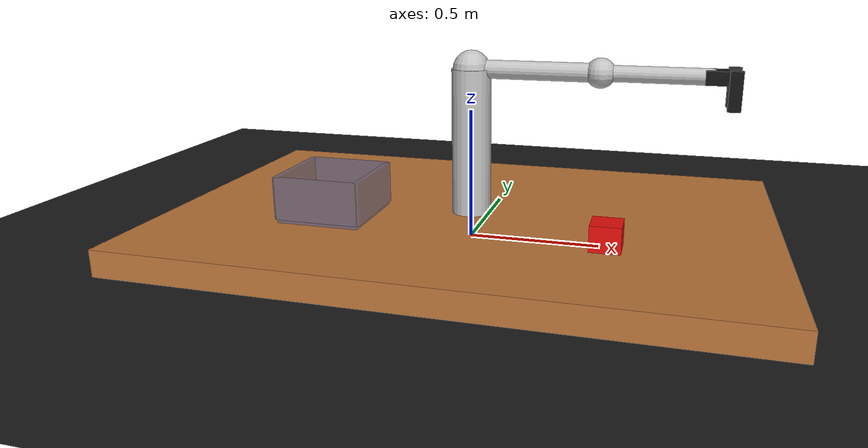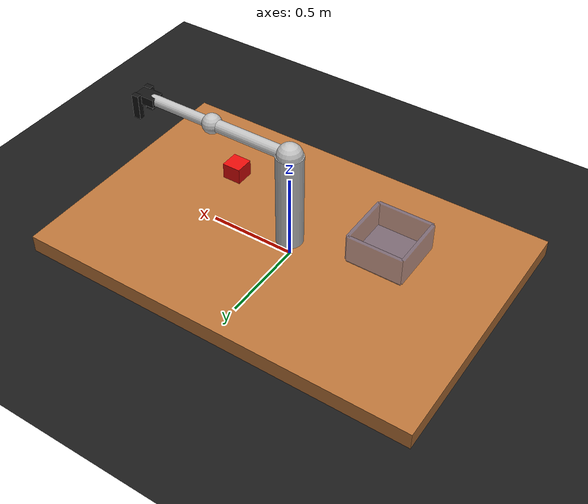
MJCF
<mujoco model="pick_place_arm">
  <compiler angle="radian" coordinate="local"/>
  <option timestep="0.005" gravity="0 0 -9.81" integrator="RK4"/>

  <asset>
    <texture name="grid" type="2d" builtin="checker" rgb1="0.15 0.15 0.15" rgb2="0.05 0.05 0.05" width="512" height="512"/>
    <material name="floor_mat" texture="grid" texrepeat="8 8" reflectance="0.15"/>
    <material name="table_mat" rgba="0.72 0.45 0.22 1"/>
    <material name="robot_mat" rgba="0.75 0.75 0.75 1"/>
    <material name="dark_mat" rgba="0.08 0.08 0.08 1"/>
    <material name="red_mat" rgba="0.9 0.05 0.04 1"/>
    <material name="blue_transparent" rgba="0.05 0.35 0.9 0.35"/>
  </asset>

  <worldbody>
    <light pos="0 -3 4" dir="0 1 -1" diffuse="1 1 1"/>
    <geom name="floor" type="plane" size="4 4 0.1" material="floor_mat"/>

    <body name="table" pos="0 0 0.05">
      <geom name="table_top" type="box" size="1.15 0.75 0.05" material="table_mat"/>
    </body>

    <!-- red cube with free joint -->
    <body name="red_cube" pos="0.55 -0.28 0.14">
      <freejoint name="cube_free"/>
      <geom name="red_cube_geom" type="box" size="0.055 0.055 0.055" material="red_mat" mass="0.04"/>
    </body>

    <!-- blue open box target -->
    <body name="blue_box" pos="-0.50 -0.18 0.12">
      <geom name="box_floor" type="box" size="0.16 0.16 0.015" material="blue_transparent" contype="0" conaffinity="0"/>
      <geom name="box_w1" type="box" pos="0 0.16 0.08" size="0.16 0.01 0.08" material="blue_transparent" contype="0" conaffinity="0"/>
      <geom name="box_w2" type="box" pos="0 -0.16 0.08" size="0.16 0.01 0.08" material="blue_transparent" contype="0" conaffinity="0"/>
      <geom name="box_w3" type="box" pos="0.16 0 0.08" size="0.01 0.16 0.08" material="blue_transparent" contype="0" conaffinity="0"/>
      <geom name="box_w4" type="box" pos="-0.16 0 0.08" size="0.01 0.16 0.08" material="blue_transparent" contype="0" conaffinity="0"/>
    </body>

    <!-- Robot: base yaw + shoulder + elbow + gripper -->
    <body name="robot_base" pos="0 0 0.10">
      <geom name="base_cylinder" type="cylinder" size="0.075 0.28" pos="0 0 0.28" material="robot_mat"/>
      <body name="yaw_link" pos="0 0 0.56">
        <joint name="base_yaw" type="hinge" axis="0 0 1" range="-3.14 3.14" damping="2"/>
        <geom name="yaw_ball" type="sphere" size="0.07" material="robot_mat"/>

        <body name="upper_arm" pos="0 0 0">
          <joint name="shoulder" type="hinge" axis="0 1 0" range="-1.55 1.25" damping="2"/>
          <geom name="upper_geom" type="capsule" fromto="0 0 0 0.48 0 0" size="0.035" material="robot_mat"/>
          <body name="elbow_link" pos="0.48 0 0">
            <joint name="elbow" type="hinge" axis="0 1 0" range="-2.2 2.2" damping="2"/>
            <geom name="elbow_ball" type="sphere" size="0.055" material="robot_mat"/>
            <geom name="forearm_geom" type="capsule" fromto="0 0 0 0.38 0 0" size="0.03" material="robot_mat"/>
            <body name="gripper_base" pos="0.38 0 0">
              <site name="ee_site" pos="0.08 0 0" size="0.02" rgba="0 1 0 1"/>
              <geom name="palm" type="box" pos="0.04 0 0" size="0.06 0.04 0.025" material="dark_mat"/>
              <body name="left_finger" pos="0.08 0.05 -0.04">
                <joint name="gripper_left" type="slide" axis="0 1 0" range="-0.04 0.03" damping="1"/>
                <geom name="left_finger_geom" type="box" size="0.022 0.015 0.07" material="dark_mat"/>
              </body>
              <body name="right_finger" pos="0.08 -0.05 -0.04">
                <joint name="gripper_right" type="slide" axis="0 1 0" range="-0.03 0.04" damping="1"/>
                <geom name="right_finger_geom" type="box" size="0.022 0.015 0.07" material="dark_mat"/>
              </body>
            </body>
          </body>
        </body>
      </body>
    </body>
  </worldbody>

  <actuator>
    <position name="act_base_yaw" joint="base_yaw" kp="180" ctrlrange="-3.14 3.14"/>
    <position name="act_shoulder" joint="shoulder" kp="180" ctrlrange="-1.55 1.25"/>
    <position name="act_elbow" joint="elbow" kp="180" ctrlrange="-2.2 2.2"/>
    <position name="act_gripper_left" joint="gripper_left" kp="120" ctrlrange="-0.04 0.03"/>
    <position name="act_gripper_right" joint="gripper_right" kp="120" ctrlrange="-0.03 0.04"/>
  </actuator>
</mujoco>
